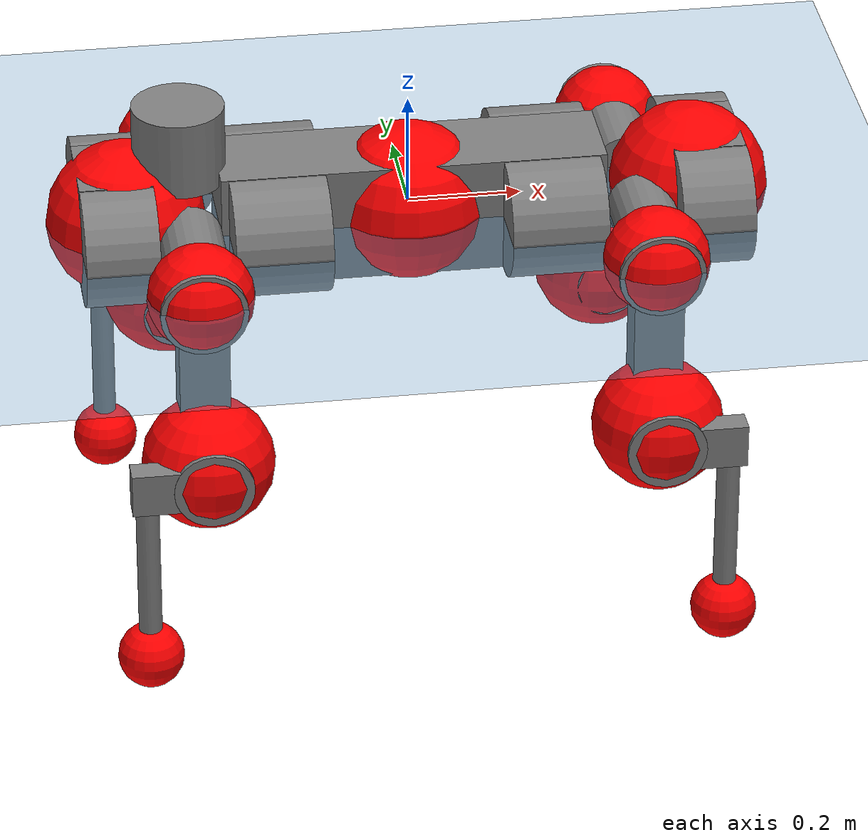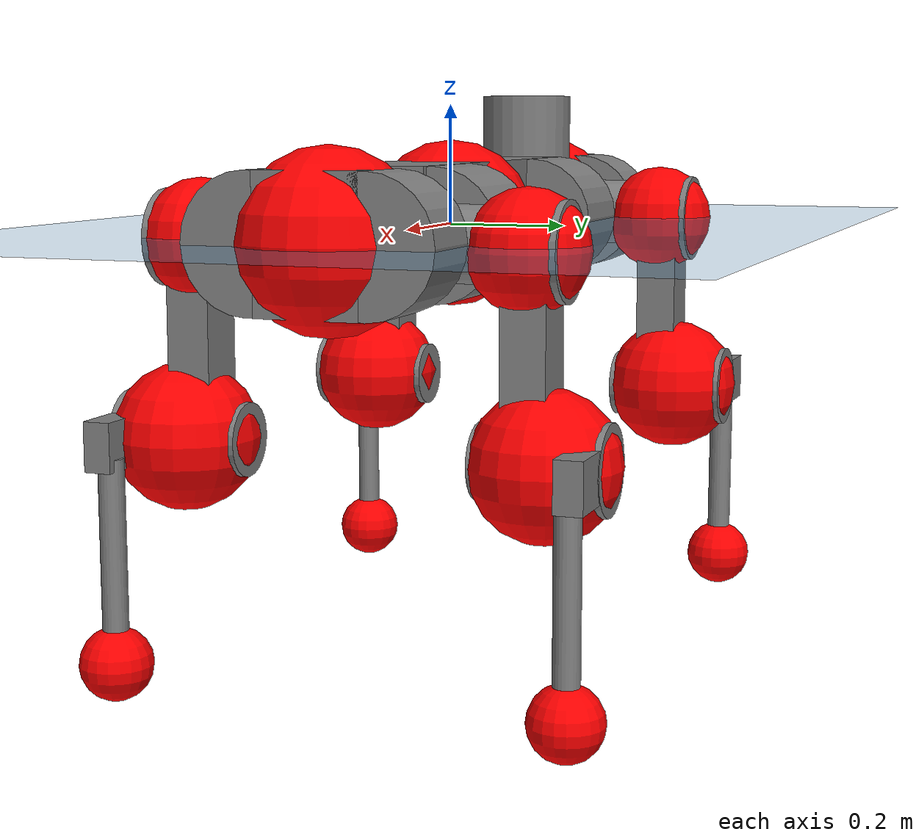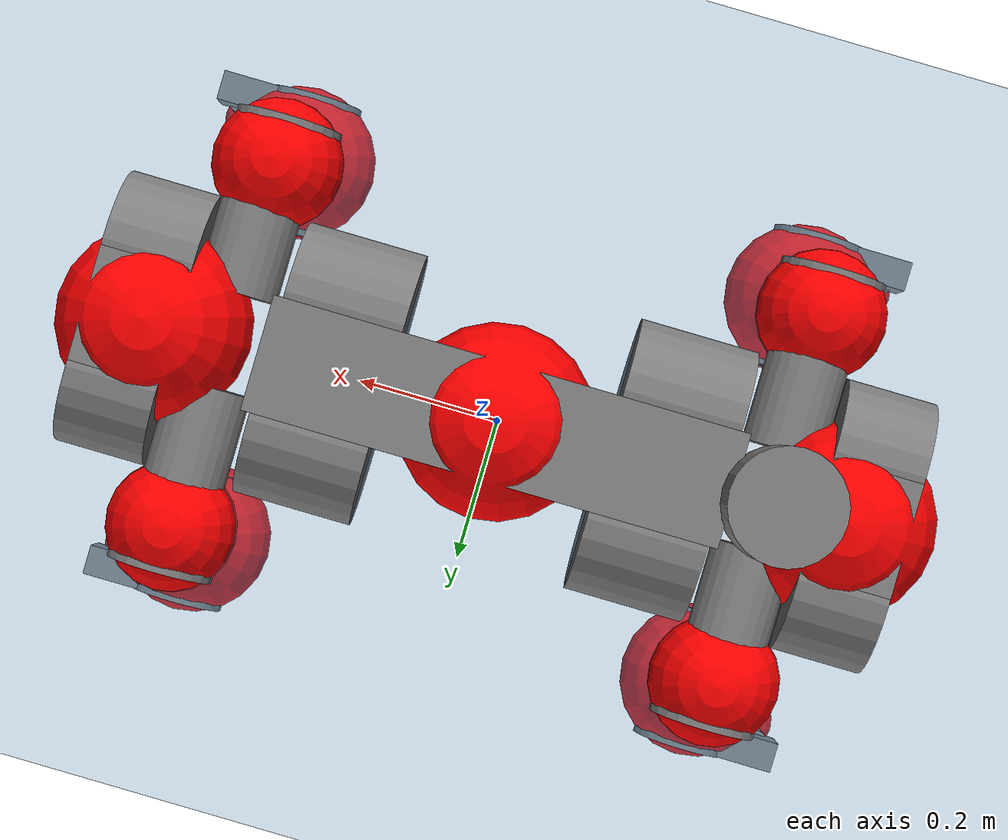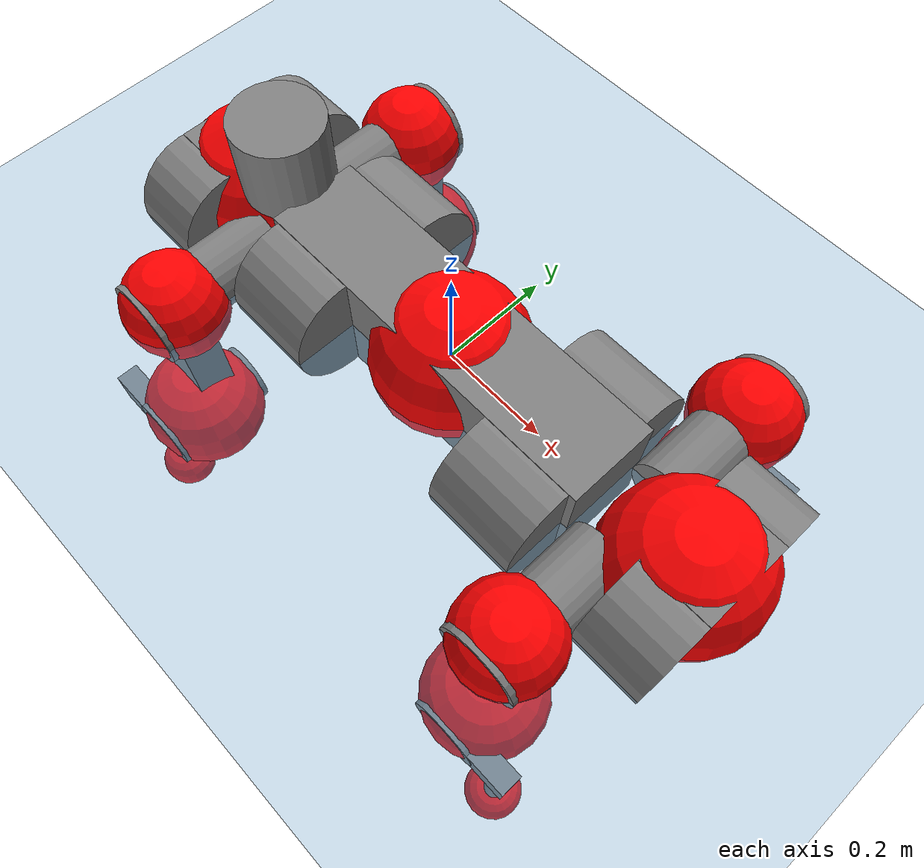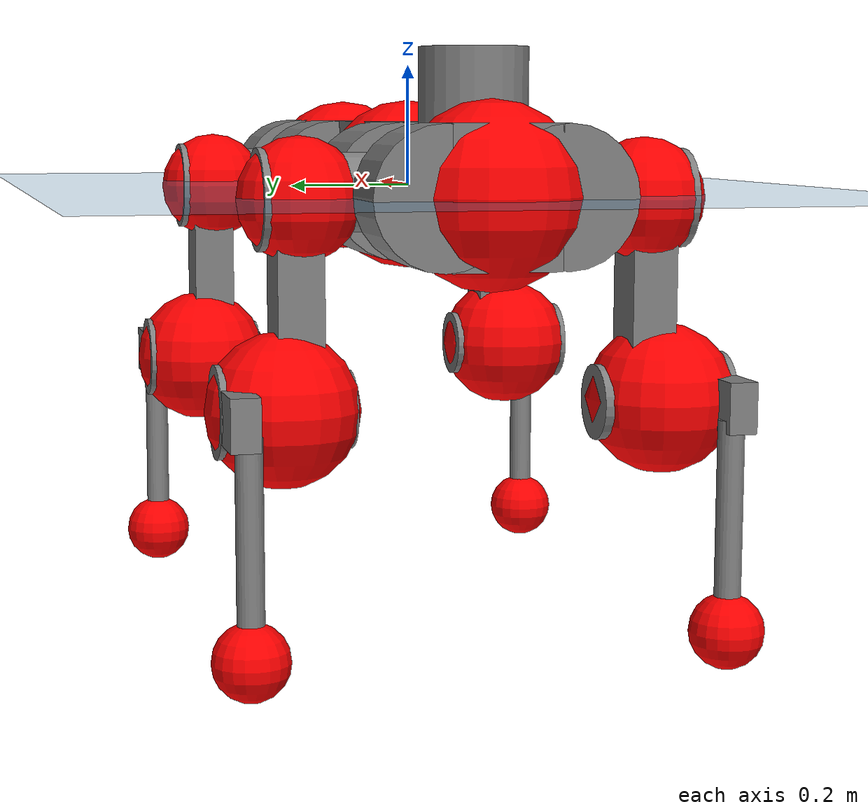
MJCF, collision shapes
<mujoco model="anymal_c">
  <compiler angle="radian" assetdir="assets" balanceinertia="true" inertiafromgeom="false"/>

  <option timestep="0.005" density="1.2" viscosity="2e-05"/>

  <size nkey="1"/>

  <visual>
    <quality shadowsize="8192"/>
    <map shadowclip="0.5"/>
  </visual>

  <default>
    <default class="/">
      <material specular="0" shininess="0.25"/>
      <geom contype="0" conaffinity="0" group="1" solref="-1000 -80"/>
      <site size="0.01 0.005 0.005" group="5"/>
      <general forcelimited="true" forcerange="-80 80" biastype="affine" gainprm="80" biasprm="0 -80 -2"/>
      <default class="anymal_c">
        <joint armature="0.01" damping="0.01" frictionloss="0.1"/>
        <default class="visual">
          <geom type="mesh" group="2"/>
          <default class="visual_zflip"/>
        </default>
        <default class="collision">
          <geom type="cylinder" group="3"/>
          <default class="foot">
            <geom size="0.03 0 0" type="sphere" condim="6" priority="1" friction="0.8 0.02 0.01" solimp="0.015 1 0.03"/>
          </default>
        </default>
      </default>
      <default class="reward_collision_sphere">
        <geom group="5" rgba="1 0 0 1"/>
      </default>
    </default>
  </default>

  <asset>
    <texture type="skybox" colorspace="auto" name="//unnamed_texture_0" builtin="gradient" rgb1="0.95 0.95 0.95" rgb2="0.95 0.95 0.95" width="100" height="600"/>
    <texture type="2d" colorspace="auto" name="texplane" builtin="checker" rgb1="0.345 0.575 0.748" rgb2="0.345 0.575 0.748" markrgb="1 1 1" width="512" height="512"/>
    <texture type="2d" colorspace="linear" name="base" file="base.png"/>
    <texture type="2d" colorspace="linear" name="top_shell" file="top_shell.png"/>
    <texture type="2d" colorspace="linear" name="bottom_shell" file="bottom_shell.png"/>
    <texture type="2d" colorspace="linear" name="remote" file="remote.png"/>
    <texture type="2d" colorspace="linear" name="hatch" file="hatch.png"/>
    <texture type="2d" colorspace="linear" name="handle" file="handle.png"/>
    <texture type="2d" colorspace="linear" name="face" file="face.png"/>
    <texture type="2d" colorspace="linear" name="battery" file="battery.png"/>
    <texture type="2d" colorspace="linear" name="lidar_cage" file="lidar_cage.png"/>
    <texture type="2d" colorspace="linear" name="depth_camera" file="depth_camera.png"/>
    <texture type="2d" colorspace="linear" name="wide_angle_camera" file="wide_angle_camera.png"/>
    <texture type="2d" colorspace="linear" name="lidar" file="lidar.png"/>
    <texture type="2d" colorspace="linear" name="drive" file="drive.png"/>
    <texture type="2d" colorspace="linear" name="hip_l" file="hip_l.png"/>
    <texture type="2d" colorspace="linear" name="shank_l" file="shank_l.png"/>
    <texture type="2d" colorspace="linear" name="foot" file="foot.png"/>
    <texture type="2d" colorspace="linear" name="thigh" file="thigh.png"/>
    <texture type="2d" colorspace="linear" name="shank_r" file="shank_r.png"/>
    <texture type="2d" colorspace="linear" name="hip_r" file="hip_r.png"/>
    <material name="MatPlane" class="/" texture="texplane" texuniform="true" texrepeat="2 2" specular="0.9" shininess="0.5"/>
    <material name="black_plastic" class="/" rgba="0.007 0.007 0.007 1"/>
    <material name="green" class="/" rgba="0.052 0.178 0.033 1"/>
    <material name="red" class="/" rgba="0.178 0.006 0.005 1"/>
    <material name="yellow" class="/" rgba="0.178 0.119 0.006 1"/>
    <material name="lwl" class="/" rgba="0.8 0.8 0.8 1"/>
    <material name="base" class="/" texture="base"/>
    <material name="top_shell" class="/" texture="top_shell"/>
    <material name="bottom_shell" class="/" texture="bottom_shell"/>
    <material name="hip_l" class="/" texture="hip_l"/>
    <material name="thigh" class="/" texture="thigh"/>
    <material name="shank_l" class="/" texture="shank_l"/>
    <material name="foot" class="/" texture="foot"/>
    <material name="hip_r" class="/" texture="hip_r"/>
    <material name="shank" class="/" texture="shank_r"/>
    <material name="hatch" class="/" texture="hatch"/>
    <material name="remote" class="/" texture="remote"/>
    <material name="handle" class="/" texture="handle"/>
    <material name="face" class="/" texture="face"/>
    <material name="depth_camera" class="/" texture="depth_camera"/>
    <material name="wide_angle_camera" class="/" texture="wide_angle_camera"/>
    <material name="battery" class="/" texture="battery"/>
    <material name="lidar_cage" class="/" texture="lidar_cage"/>
    <material name="lidar" class="/" texture="lidar"/>
    <material name="drive" class="/" texture="drive"/>
    <mesh name="base_0" class="/" file="base_0.obj"/>
    <mesh name="base_1" class="/" file="base_1.obj"/>
    <mesh name="base_2" class="/" file="base_2.obj"/>
    <mesh name="base_3" class="/" file="base_3.obj"/>
    <mesh name="base_4" class="/" file="base_4.obj"/>
    <mesh name="base_5" class="/" file="base_5.obj"/>
    <mesh name="top_shell" class="/" file="top_shell.obj"/>
    <mesh name="bottom_shell" class="/" file="bottom_shell.obj"/>
    <mesh name="remote" class="/" file="remote.obj"/>
    <mesh name="handle" class="/" file="handle.obj"/>
    <mesh name="face" class="/" file="face.obj"/>
    <mesh name="wide_angle_camera" class="/" file="wide_angle_camera.obj"/>
    <mesh name="depth_camera" class="/" file="depth_camera.obj"/>
    <mesh name="battery" class="/" file="battery.obj"/>
    <mesh name="lidar_cage" class="/" file="lidar_cage.obj"/>
    <mesh name="lidar" class="/" file="lidar.obj"/>
    <mesh name="drive" class="/" file="drive.obj"/>
    <mesh name="hip_l" class="/" file="hip_l.obj"/>
    <mesh name="thigh" class="/" file="thigh.obj"/>
    <mesh name="shank_l" class="/" file="shank_l.obj"/>
    <mesh name="foot" class="/" file="foot.obj"/>
    <mesh name="hip_r" class="/" file="hip_r.obj"/>
    <mesh name="hatch" class="/" file="hatch.obj"/>
    <mesh name="shank_r" class="/" file="shank_r.obj"/>
  </asset>

  <worldbody>
    <geom name="floor" class="/" size="100 100 0.125" type="plane" group="0" material="MatPlane"/>
    <light name="toplight_shadow" class="/" pos="0 0 5" dir="0.0990148 0.0990148 -0.990148" type="directional" ambient="0.04 0.04 0.04" diffuse="0.55 0.55 0.55" specular="0.12 0.12 0.12"/>
    <light name="toplight_fill" class="/" pos="0 0 5" dir="0.0990148 0.0990148 -0.990148" type="directional" castshadow="false" ambient="0.04 0.04 0.04" diffuse="0.3 0.3 0.3" specular="0.08 0.08 0.08"/>
    <body name="trunk" childclass="anymal_c" pos="0.000805373 0.00204415 0.00163318" quat="1 -2.72642e-05 -5.61916e-05 -9.78672e-05">
      <inertial pos="0.00476904 0.00272485 0.0508612" quat="0.52206 0.506905 0.483281 0.486765" mass="31.3133" diaginertia="1.07681 2.23884 0.352721"/>
      <joint name="//unnamed_joint_0" type="free" armature="0" damping="0" frictionloss="0"/>
      <geom name="//unnamed_geom_1" class="visual" material="green" mesh="base_0"/>
      <geom name="//unnamed_geom_2" class="visual" material="yellow" mesh="base_1"/>
      <geom name="//unnamed_geom_3" class="visual" material="red" mesh="base_2"/>
      <geom name="//unnamed_geom_4" class="visual" material="black_plastic" mesh="base_3"/>
      <geom name="//unnamed_geom_5" class="visual" material="lwl" mesh="base_4"/>
      <geom name="//unnamed_geom_6" class="visual" material="base" mesh="base_5"/>
      <geom name="trunk_1" class="collision" size="0.340058 0.082083 0.105535" type="box"/>
      <geom name="trunk_2" class="collision" size="0.105535 0.0850145" pos="0.241863 0.0914006 0" quat="0.707107 0 0.707107 0"/>
      <geom name="trunk_3" class="collision" size="0.105535 0.0850145" pos="-0.241863 0.0914006 0" quat="0.707107 0 0.707107 0"/>
      <geom name="trunk_4" class="collision" size="0.105535 0.0850145" pos="0.241863 -0.0914006 0" quat="0.707107 0 0.707107 0"/>
      <geom name="trunk_5" class="collision" size="0.105535 0.0850145" pos="-0.241863 -0.0914006 0" quat="0.707107 0 0.707107 0"/>
      <geom name="//unnamed_geom_12" class="visual" material="top_shell" mesh="top_shell"/>
      <geom name="//unnamed_geom_13" class="visual" material="bottom_shell" mesh="bottom_shell"/>
      <geom name="//unnamed_geom_14" class="visual" material="remote" mesh="remote"/>
      <geom name="//unnamed_geom_15" class="visual" material="handle" mesh="handle"/>
      <geom name="//unnamed_geom_16" class="visual" pos="0.46093 0 0" quat="1 0 0 0" material="face" mesh="face"/>
      <geom name="trunk_6" class="collision" size="0.0644938 0.082083 0.105535" pos="0.522091 0 0" type="box"/>
      <geom name="//unnamed_geom_18" class="collision" size="0.105535 0.0644938" pos="0.522091 0.0914006 0" quat="0.707107 0 0.707107 0"/>
      <geom name="//unnamed_geom_19" class="collision" size="0.105535 0.0644938" pos="0.522091 -0.0914006 0" quat="0.707107 0 0.707107 0"/>
      <geom name="//unnamed_geom_20" class="visual" pos="0.513361 0 -0.0320325" quat="0.965926 0 0.258819 0" material="depth_camera" mesh="depth_camera"/>
      <geom name="//unnamed_geom_21" class="visual" pos="0.570464 0 0.0164685" material="wide_angle_camera" mesh="wide_angle_camera"/>
      <geom name="//unnamed_geom_22" class="visual_zflip" pos="-0.46093 0 0" quat="0 0 0 1" material="face" mesh="face"/>
      <geom name="trunk_7" class="collision" size="0.0644938 0.082083 0.105535" pos="-0.522091 0 0" quat="0 0 0 1" type="box"/>
      <geom name="//unnamed_geom_24" class="collision" size="0.105535 0.0644938" pos="-0.522091 -0.0914006 0" quat="0 -0.707107 0 0.707107"/>
      <geom name="//unnamed_geom_25" class="collision" size="0.105535 0.0644938" pos="-0.522091 0.0914006 0" quat="0 -0.707107 0 0.707107"/>
      <geom name="//unnamed_geom_26" class="visual" pos="-0.513361 0 -0.0320325" quat="0 -0.258819 0 0.965926" material="depth_camera" mesh="depth_camera"/>
      <geom name="//unnamed_geom_27" class="visual_zflip" pos="-0.570464 0 0.0164685" quat="0 0 0 1" material="wide_angle_camera" mesh="wide_angle_camera"/>
      <geom name="//unnamed_geom_28" class="visual" material="battery" mesh="battery"/>
      <geom name="//unnamed_geom_29" class="visual" pos="0 0.102377 0.0320485" quat="0.683013 -0.183013 0.183013 0.683013" material="depth_camera" mesh="depth_camera"/>
      <geom name="//unnamed_geom_30" class="visual" pos="0 -0.102377 0.0320485" quat="0.683013 0.183013 0.183013 -0.683013" material="depth_camera" mesh="depth_camera"/>
      <geom name="//unnamed_geom_31" class="visual" pos="-0.404773 0 0.0808576" quat="1 0 0 0" material="lidar_cage" mesh="lidar_cage"/>
      <geom name="trunk_8" class="collision" size="0.082083 0.0703568" pos="-0.404773 0 0.146864"/>
      <geom name="//unnamed_geom_33" class="visual" pos="-0.404773 7.61028e-05 0.156435" quat="0.707107 0 0 -0.707107" material="lidar" mesh="lidar"/>
      <geom name="//unnamed_geom_34" class="visual" pos="0.333493 0.135722 3.54697e-09" quat="0.258819 0.965926 0 0" material="drive" mesh="drive"/>
      <geom name="//unnamed_geom_35" class="visual" pos="0.333493 -0.135722 -3.54697e-09" quat="0.258819 -0.965926 0 0" material="drive" mesh="drive"/>
      <geom name="//unnamed_geom_36" class="visual" pos="-0.333493 0.135722 -3.54697e-09" quat="0 0 0.965926 -0.258819" material="drive" mesh="drive"/>
      <geom name="//unnamed_geom_37" class="visual" pos="-0.333493 -0.135722 3.54697e-09" quat="0 0 -0.965926 -0.258819" material="drive" mesh="drive"/>
      <geom name="//unnamed_geom_38" class="visual" pos="0.128994 0 0.0803075" quat="1 0 0 0" material="hatch" mesh="hatch"/>
      <geom name="//unnamed_geom_39" class="reward_collision_sphere" size="0.140714"/>
      <geom name="//unnamed_geom_40" class="reward_collision_sphere" size="0.140714" pos="0.500407 0 0"/>
      <geom name="//unnamed_geom_41" class="reward_collision_sphere" size="0.140714" pos="-0.500407 0 0"/>
      <site name="imu" pos="0.267905 0.0118421 0.0610631" size="0.0117261"/>
      <camera name="track" pos="0 -2.61145 0" quat="0.707107 0.707107 0 0" mode="trackcom"/>
      <camera name="ego_camera" pos="0.500407 0 -0.0440041" quat="-0.5 -0.5 0.5 0.5"/>
      <body name="LF_HIP" pos="0.332904 0.129901 -0.00399064" quat="0.259096 0.965851 0.0011454 -5.51797e-05">
        <inertial pos="0.0609316 -0.0202157 -0.00821775" quat="-0.135883 0.712228 -0.133349 0.675637" mass="4.58579" diaginertia="0.00997082 0.0196955 0.00521767"/>
        <joint name="LF_HAA" pos="0 0 0" axis="1 1.89798e-05 -2.1321e-05" range="-0.843665 0.50051" armature="0.0112527" damping="0.0175325" frictionloss="0.112338"/>
        <geom name="//unnamed_geom_42" class="visual" pos="0 0.000208652 -3.42709e-05" quat="0.258819 -0.965926 0 0" material="hip_l" mesh="hip_l"/>
        <geom name="//unnamed_geom_43" class="visual" pos="0.0666097 -0.0831892 -0.0465084" quat="0.183013 -0.683013 0.683013 0.183013" material="drive" mesh="drive"/>
        <geom name="//unnamed_geom_44" class="collision" size="0.0586307 0.082083" pos="0.0666097 -0.0156162 -0.00759621" quat="-0.353553 -0.612372 0.612372 -0.353553"/>
        <body name="LF_THIGH" pos="0.0663445 -0.100782 -0.0477041" quat="0.183449 -0.682917 0.682867 0.183474">
          <inertial pos="0.0330513 -8.00122e-05 -0.268075" quat="0.99116 -0.00946852 -0.0905502 0.0965041" mass="4.94937" diaginertia="0.0530269 0.114509 0.00661567"/>
          <joint name="LF_HFE" pos="0 0 0" axis="0.999936 0.0113343 0.000249584" stiffness="0.0162075" range="-3.12249 3.05216" armature="0.0101961" damping="0.0257097" frictionloss="0.127743"/>
          <geom name="//unnamed_geom_45" class="visual" pos="-0.00385403 -6.07306e-06 0" quat="0.707107 0 0 -0.707107" material="thigh" mesh="thigh"/>
          <geom name="//unnamed_geom_46" class="collision" size="0.0762199 0.0469046" pos="0.0444806 0 0" quat="0.5 0.5 -0.5 -0.5"/>
          <geom name="//unnamed_geom_47" class="collision" size="0.043973 0.0351784 0.165707" pos="0.0333605 0 -0.15546" quat="0.707107 0 0 -0.707107" type="box"/>
          <geom name="//unnamed_geom_48" class="visual" pos="0.111535 0 -0.313529" quat="1 0 0 0" material="drive" mesh="drive"/>
          <geom name="//unnamed_geom_49" class="collision" size="0.0586307 0.082083" pos="0.0336941 0 -0.313529" quat="0.707107 0 0.707107 0"/>
          <geom name="//unnamed_geom_50" class="reward_collision_sphere" size="0.0938091" pos="0.0278004 0 0"/>
          <body name="LF_SHANK" pos="0.10928 0.00421073 -0.315587" quat="1 -0.000244976 -3.84323e-05 0.000118704">
            <inertial pos="0.00547121 -0.0798176 -0.0832673" quat="0.993048 -0.11459 0.00245151 -0.0268013" mass="0.914864" diaginertia="0.0175041 0.0326394 0.00189817"/>
            <joint name="LF_KFE" pos="0 0 0" axis="0.999993 0.00369014 -0.00117357" range="-3.03463 3.12582" armature="0.0120109" damping="0.00910277" frictionloss="0.119561"/>
            <geom name="//unnamed_geom_51" class="visual" pos="-0.00125672 -0.00670088 0" quat="0.707107 0 0 -0.707107" material="shank_l" mesh="shank_l"/>
            <geom name="LF_kfe_act" class="collision" size="0.0703568 0.0234523" pos="0.0222403 0 0" quat="0.5 0.5 -0.5 -0.5"/>
            <geom name="//unnamed_geom_53" class="collision" size="0.0674241 0.0395757 0.0222797" pos="0.0222403 -0.0750778 0" quat="0.5 0.5 -0.5 -0.5" type="box"/>
            <geom name="//unnamed_geom_54" class="visual" pos="0.0145121 -0.116998 -0.371802" quat="0.382683 0 0 -0.92388" material="foot" mesh="foot"/>
            <geom name="LF_calf" class="collision" size="0.0205207 0.165634" pos="0.0145118 -0.114838 -0.185901" quat="0.707107 0 0 -0.707107"/>
            <geom name="LF_foot" class="foot" size="0.0306575" pos="0.0145118 -0.114838 -0.34705" quat="0.707107 0 0 -0.707107"/>
            <geom name="//unnamed_geom_57" class="reward_collision_sphere" size="0.117261" pos="-0.0556008 0 0"/>
            <geom name="//unnamed_geom_58" class="reward_collision_sphere" size="0.0586307" pos="0.0145118 -0.114838 -0.34705"/>
            <site name="LF_foot" class="foot" pos="0.0145118 -0.114838 -0.34705" quat="0.707107 0 0 -0.707107" size="0.0117261"/>
          </body>
        </body>
      </body>
      <body name="RF_HIP" pos="0.334603 -0.135923 -0.00158397" quat="0.258944 -0.965892 -0.000355225 -9.49992e-05">
        <inertial pos="0.0612666 0.0228228 -0.00666049" quat="0.132802 0.67966 0.1325 0.709133" mass="4.76143" diaginertia="0.00986974 0.0205124 0.00524094"/>
        <joint name="RF_HAA" pos="0 0 0" axis="0.999996 -0.00139883 -0.00256716" range="-0.479666 0.721358" armature="0.0130182" damping="0.0226024" frictionloss="0.128578"/>
        <geom name="//unnamed_geom_59" class="visual" pos="0 -0.00020865 -3.42708e-05" quat="0.258819 0.965926 0 0" material="hip_r" mesh="hip_r"/>
        <geom name="//unnamed_geom_60" class="visual" pos="0.0666097 0.0831892 -0.0465084" quat="0.183013 0.683013 0.683013 -0.183013" material="drive" mesh="drive"/>
        <geom name="//unnamed_geom_61" class="collision" size="0.0586307 0.082083" pos="0.0666097 0.0156162 -0.00759621" quat="-0.353553 0.612372 0.612372 0.353553"/>
        <body name="RF_THIGH" pos="0.0623437 0.0886755 -0.045771" quat="0.183163 0.682649 0.683421 -0.182696">
          <inertial pos="0.03348 0.00579635 -0.270993" quat="0.992752 -0.00547324 -0.0803373 0.0892186" mass="4.70466" diaginertia="0.0505733 0.109999 0.00637168"/>
          <joint name="RF_HFE" pos="0 0 0" axis="0.999989 0.00205743 -0.00422487" range="-3.04899 3.13362" armature="0.0128276" damping="0.0238646" frictionloss="0.116063"/>
          <geom name="//unnamed_geom_62" class="visual" pos="-0.00385403 -6.07306e-06 0" quat="0.707107 0 0 -0.707107" material="thigh" mesh="thigh"/>
          <geom name="//unnamed_geom_63" class="collision" size="0.0762199 0.0469046" pos="0.0444806 0 0" quat="0.5 0.5 0.5 0.5"/>
          <geom name="//unnamed_geom_64" class="collision" size="0.043973 0.0351784 0.165707" pos="0.0333605 0 -0.15546" quat="0.707107 0 0 0.707107" type="box"/>
          <geom name="//unnamed_geom_65" class="visual" pos="0.111535 0 -0.313529" quat="1 0 0 0" material="drive" mesh="drive"/>
          <geom name="//unnamed_geom_66" class="collision" size="0.0586307 0.082083" pos="0.0336941 0 -0.313529" quat="0.707107 0 0.707107 0"/>
          <geom name="//unnamed_geom_67" class="reward_collision_sphere" size="0.0938091" pos="0.0278004 0 0"/>
          <body name="RF_SHANK" pos="0.116032 0.00281754 -0.313197" quat="0.999999 -0.00152444 -0.000363825 0.000389091">
            <inertial pos="0.00794413 0.0792073 -0.0896849" quat="0.992962 0.115793 -0.0022078 0.0247795" mass="0.969713" diaginertia="0.0178503 0.0348677 0.00185554"/>
            <joint name="RF_KFE" pos="0 0 0" axis="0.999643 0.0223828 -0.0146036" range="-3.08136 3.11984" armature="0.0093078" damping="0" frictionloss="0.13553"/>
            <geom name="//unnamed_geom_68" class="visual" pos="-0.00125671 0.00670086 0" quat="0.707107 0 0 0.707107" material="shank" mesh="shank_r"/>
            <geom name="RF_kfe_act" class="collision" size="0.0703568 0.0234523" pos="0.0222403 0 0" quat="0.5 0.5 0.5 0.5"/>
            <geom name="//unnamed_geom_70" class="collision" size="0.0674241 0.0395757 0.0222797" pos="0.0222403 0.0750778 0" quat="0.5 0.5 0.5 0.5" type="box"/>
            <geom name="//unnamed_geom_71" class="visual" pos="0.0145115 0.116998 -0.371802" quat="0.382683 0 0 0.92388" material="foot" mesh="foot"/>
            <geom name="RF_calf" class="collision" size="0.0205207 0.165634" pos="0.0145118 0.114838 -0.185901" quat="0.707107 0 0 0.707107"/>
            <geom name="RF_foot" class="foot" size="0.0304163" pos="0.0145118 0.114838 -0.34705" quat="0.707107 0 0 0.707107"/>
            <geom name="//unnamed_geom_74" class="reward_collision_sphere" size="0.117261" pos="-0.0556008 0 0"/>
            <geom name="//unnamed_geom_75" class="reward_collision_sphere" size="0.0586307" pos="0.0145118 0.114838 -0.34705"/>
            <site name="RF_foot" class="foot" pos="0.0145118 0.114838 -0.34705" quat="0.707107 0 0 0.707107" size="0.0117261"/>
          </body>
        </body>
      </body>
      <body name="LH_HIP" pos="-0.33001 0.135102 0.00455225" quat="-0.000806312 -0.000120628 0.965724 -0.259571">
        <inertial pos="0.0624518 0.0226027 -0.00875671" quat="0.137976 0.683476 0.118467 0.706957" mass="4.69076" diaginertia="0.0100576 0.0190581 0.00544898"/>
        <joint name="LH_HAA" pos="0 0 0" axis="0.999949 -0.00226824 0.00983401" range="-0.446729 0.69183" armature="0.0114824" damping="0.0157434" frictionloss="0.131606"/>
        <geom name="//unnamed_geom_76" class="visual" pos="0 -0.00020865 -3.42708e-05" quat="-0.258819 -0.965926 0 0" material="hip_r" mesh="hip_r"/>
        <geom name="//unnamed_geom_77" class="visual" pos="0.0666097 0.0831892 -0.0465084" quat="0.183013 0.683013 0.683013 -0.183013" material="drive" mesh="drive"/>
        <geom name="//unnamed_geom_78" class="collision" size="0.0586307 0.082083" pos="0.0666097 0.0156162 -0.00759621" quat="-0.353553 0.612372 0.612372 0.353553"/>
        <body name="LH_THIGH" pos="0.0667881 0.0931724 -0.0410575" quat="0.182014 0.682434 0.683703 -0.183586">
          <inertial pos="0.0335224 -0.00212557 -0.265463" quat="0.992768 -0.00541905 -0.0808244 0.0886036" mass="4.67592" diaginertia="0.0510173 0.118036 0.00674895"/>
          <joint name="LH_HFE" pos="0 0 0" axis="0.999993 -0.00381626 0.000244875" range="-3.09981 3.13371" armature="0.0108042" damping="0.0217884" frictionloss="0.107221"/>
          <geom name="//unnamed_geom_79" class="visual" pos="-0.00385403 -6.07306e-06 0" quat="0.707107 0 0 -0.707107" material="thigh" mesh="thigh"/>
          <geom name="//unnamed_geom_80" class="collision" size="0.0762199 0.0469046" pos="0.0444806 0 0" quat="0.5 0.5 -0.5 -0.5"/>
          <geom name="//unnamed_geom_81" class="collision" size="0.043973 0.0351784 0.165707" pos="0.0333605 0 -0.15546" quat="0.707107 0 0 -0.707107" type="box"/>
          <geom name="//unnamed_geom_82" class="visual" pos="0.111535 0 -0.313529" quat="1 0 0 0" material="drive" mesh="drive"/>
          <geom name="//unnamed_geom_83" class="collision" size="0.0586307 0.082083" pos="0.0336941 0 -0.313529" quat="0.707107 0 0.707107 0"/>
          <geom name="//unnamed_geom_84" class="reward_collision_sphere" size="0.0938091" pos="0.0278004 0 0"/>
          <body name="LH_SHANK" pos="0.111812 0.0061027 -0.310402" quat="0.999999 -0.000245561 0.000299026 -0.00129764">
            <inertial pos="0.00448773 0.0803724 -0.0911444" quat="0.993168 0.114204 0.00279132 0.0238155" mass="0.944098" diaginertia="0.0165247 0.0345686 0.00179568"/>
            <joint name="LH_KFE" pos="0 0 0" axis="0.999989 0.00316489 0.00343109" range="-3.25174 3.17716" armature="0.011739" damping="0.00499237" frictionloss="0.118899"/>
            <geom name="//unnamed_geom_85" class="visual" pos="-0.00125671 0.00670086 0" quat="-0.707107 0 0 -0.707107" material="shank" mesh="shank_r"/>
            <geom name="LH_kfe_act" class="collision" size="0.0703568 0.0234523" pos="0.0222403 0 0" quat="0.5 0.5 -0.5 -0.5"/>
            <geom name="//unnamed_geom_87" class="collision" size="0.0674241 0.0395757 0.0222797" pos="0.0222403 0.0750778 0" quat="0.5 0.5 -0.5 -0.5" type="box"/>
            <geom name="//unnamed_geom_88" class="visual" pos="0.0145115 0.116998 -0.371802" quat="-0.382683 0 0 -0.92388" material="foot" mesh="foot"/>
            <geom name="LH_calf" class="collision" size="0.0205207 0.165634" pos="0.0145118 0.114838 -0.185901" quat="0.707107 0 0 -0.707107"/>
            <geom name="LH_foot" class="foot" size="0.0379499" pos="0.0145118 0.114838 -0.34705" quat="0.707107 0 0 -0.707107"/>
            <geom name="//unnamed_geom_91" class="reward_collision_sphere" size="0.117261" pos="-0.0556008 0 0"/>
            <geom name="//unnamed_geom_92" class="reward_collision_sphere" size="0.0586307" pos="0.0145118 0.114838 -0.34705"/>
            <site name="LH_foot" class="foot" pos="0.0145118 0.114838 -0.34705" quat="0.707107 0 0 -0.707107" size="0.0117261"/>
          </body>
        </body>
      </body>
      <body name="RH_HIP" pos="-0.331199 -0.13979 -0.00127099" quat="0.000228891 -0.00107238 -0.965673 -0.25976">
        <inertial pos="0.0653536 -0.0230452 -0.00849332" quat="-0.12699 0.703093 -0.143623 0.684767" mass="4.52976" diaginertia="0.00975284 0.0191133 0.00502633"/>
        <joint name="RH_HAA" pos="0 0 0" axis="0.999841 -0.0125391 -0.0126687" stiffness="0.00376143" range="-0.767526 0.575029" armature="0.011566" damping="0.0032941" frictionloss="0.128233"/>
        <geom name="//unnamed_geom_93" class="visual" pos="0 0.000208652 -3.42709e-05" quat="-0.258819 0.965926 0 0" material="hip_l" mesh="hip_l"/>
        <geom name="//unnamed_geom_94" class="visual" pos="0.0666097 -0.0831892 -0.0465084" quat="-0.183013 0.683013 -0.683013 -0.183013" material="drive" mesh="drive"/>
        <geom name="//unnamed_geom_95" class="collision" size="0.0586307 0.082083" pos="0.0666097 -0.0156162 -0.00759621" quat="0.353553 0.612372 -0.612372 0.353553"/>
        <body name="RH_THIGH" pos="0.0668713 -0.0962561 -0.0459634" quat="-0.182921 0.683902 -0.682614 -0.181262">
          <inertial pos="0.0345919 0.0040721 -0.270339" quat="0.993219 0.00676289 -0.0782262 0.0857383" mass="5.00167" diaginertia="0.0525031 0.114142 0.00673235"/>
          <joint name="RH_HFE" pos="0 0 0" axis="0.999776 -0.0176601 -0.0116722" range="-3.09054 3.1466" armature="0.0112428" damping="0.00879514" frictionloss="0.131368"/>
          <geom name="//unnamed_geom_96" class="visual" pos="-0.00385403 -6.07306e-06 0" quat="0.707107 0 0 -0.707107" material="thigh" mesh="thigh"/>
          <geom name="//unnamed_geom_97" class="collision" size="0.0762199 0.0469046" pos="0.0444806 0 0" quat="0.5 0.5 0.5 0.5"/>
          <geom name="//unnamed_geom_98" class="collision" size="0.043973 0.0351784 0.165707" pos="0.0333605 0 -0.15546" quat="0.707107 0 0 0.707107" type="box"/>
          <geom name="//unnamed_geom_99" class="visual" pos="0.111535 0 -0.313529" quat="1 0 0 0" material="drive" mesh="drive"/>
          <geom name="//unnamed_geom_100" class="collision" size="0.0586307 0.082083" pos="0.0336941 0 -0.313529" quat="0.707107 0 0.707107 0"/>
          <geom name="//unnamed_geom_101" class="reward_collision_sphere" size="0.0938091" pos="0.0278004 0 0"/>
          <body name="RH_SHANK" pos="0.118519 0.00341631 -0.310313" quat="1 0.000107816 0.000343763 0.000460331">
            <inertial pos="-0.000138858 -0.0799672 -0.091023" quat="0.992951 -0.116896 -0.00613125 -0.0186141" mass="0.929067" diaginertia="0.0162956 0.0338743 0.00184713"/>
            <joint name="RH_KFE" pos="0 0 0" axis="0.999755 0.0191391 0.0111227" range="-3.07971 3.05113" armature="0.0141512" damping="0.0112022" frictionloss="0.114026"/>
            <geom name="//unnamed_geom_102" class="visual" pos="-0.00125672 -0.00670088 0" quat="0.707107 0 0 -0.707107" material="shank_l" mesh="shank_l"/>
            <geom name="RH_kfe_act" class="collision" size="0.0703568 0.0234523" pos="0.0222403 0 0" quat="0.5 0.5 0.5 0.5"/>
            <geom name="//unnamed_geom_104" class="collision" size="0.0674241 0.0395757 0.0222797" pos="0.0222403 -0.0750778 0" quat="0.5 0.5 0.5 0.5" type="box"/>
            <geom name="//unnamed_geom_105" class="visual" pos="0.0145121 -0.116998 -0.371802" quat="0.382683 0 0 -0.92388" material="foot" mesh="foot"/>
            <geom name="RH_calf" class="collision" size="0.0205207 0.165634" pos="0.0145118 -0.114838 -0.185901" quat="0.707107 0 0 0.707107"/>
            <geom name="RH_foot" class="foot" size="0.0332369" pos="0.0145118 -0.114838 -0.34705" quat="0.707107 0 0 0.707107"/>
            <geom name="//unnamed_geom_108" class="reward_collision_sphere" size="0.117261" pos="-0.0556008 0 0"/>
            <geom name="//unnamed_geom_109" class="reward_collision_sphere" size="0.0586307" pos="0.0145118 -0.114838 -0.34705"/>
            <site name="RH_foot" class="foot" pos="0.0145118 -0.114838 -0.34705" quat="0.707107 0 0 0.707107" size="0.0117261"/>
          </body>
        </body>
      </body>
    </body>
  </worldbody>

  <contact>
    <pair class="/" geom1="floor" geom2="LF_foot" name="//unnamed_contact_0"/>
    <pair class="/" geom1="floor" geom2="RF_foot" name="//unnamed_contact_1"/>
    <pair class="/" geom1="floor" geom2="LH_foot" name="//unnamed_contact_2"/>
    <pair class="/" geom1="floor" geom2="RH_foot" name="//unnamed_contact_3"/>
  </contact>

  <actuator>
    <general name="LF_HAA" class="/" joint="LF_HAA" forcerange="-72.2416 72.2416" gainprm="83.8284" biasprm="0 -83.8284 -2.45462"/>
    <general name="LF_HFE" class="/" joint="LF_HFE" forcerange="-96.2953 96.2953" gainprm="83.8284" biasprm="0 -83.8284 -2.45462"/>
    <general name="LF_KFE" class="/" joint="LF_KFE" forcerange="-86.2663 86.2663" gainprm="83.8284" biasprm="0 -83.8284 -2.45462"/>
    <general name="RF_HAA" class="/" joint="RF_HAA" forcerange="-78.1303 78.1303" gainprm="83.8284" biasprm="0 -83.8284 -2.45462"/>
    <general name="RF_HFE" class="/" joint="RF_HFE" forcerange="-78.3036 78.3036" gainprm="83.8284" biasprm="0 -83.8284 -2.45462"/>
    <general name="RF_KFE" class="/" joint="RF_KFE" forcerange="-91.2428 91.2428" gainprm="83.8284" biasprm="0 -83.8284 -2.45462"/>
    <general name="LH_HAA" class="/" joint="LH_HAA" forcerange="-87.3421 87.3421" gainprm="83.8284" biasprm="0 -83.8284 -2.45462"/>
    <general name="LH_HFE" class="/" joint="LH_HFE" forcerange="-104.482 104.482" gainprm="83.8284" biasprm="0 -83.8284 -2.45462"/>
    <general name="LH_KFE" class="/" joint="LH_KFE" forcerange="-93.8037 93.8037" gainprm="83.8284" biasprm="0 -83.8284 -2.45462"/>
    <general name="RH_HAA" class="/" joint="RH_HAA" forcerange="-112.212 112.212" gainprm="83.8284" biasprm="0 -83.8284 -2.45462"/>
    <general name="RH_HFE" class="/" joint="RH_HFE" forcerange="-87.634 87.634" gainprm="83.8284" biasprm="0 -83.8284 -2.45462"/>
    <general name="RH_KFE" class="/" joint="RH_KFE" forcerange="-93.1077 93.1077" gainprm="83.8284" biasprm="0 -83.8284 -2.45462"/>
  </actuator>

  <sensor>
    <gyro site="imu" name="imu_angular_velocity"/>
    <velocimeter site="imu" name="imu_linear_velocity"/>
    <framelinvel objtype="site" objname="LF_foot" name="LF_foot_global_linear_velocity"/>
    <framelinvel objtype="site" objname="RF_foot" name="RF_foot_global_linear_velocity"/>
    <framelinvel objtype="site" objname="LH_foot" name="LH_foot_global_linear_velocity"/>
    <framelinvel objtype="site" objname="RH_foot" name="RH_foot_global_linear_velocity"/>
  </sensor>

  <keyframe>
    <key name="home" qpos="0 0 0.55 1 0 0 0 0 0.4 -0.8 0 -0.4 0.8 0 -0.4 0.8 0 0.4 -0.8"/>
  </keyframe>
</mujoco>
